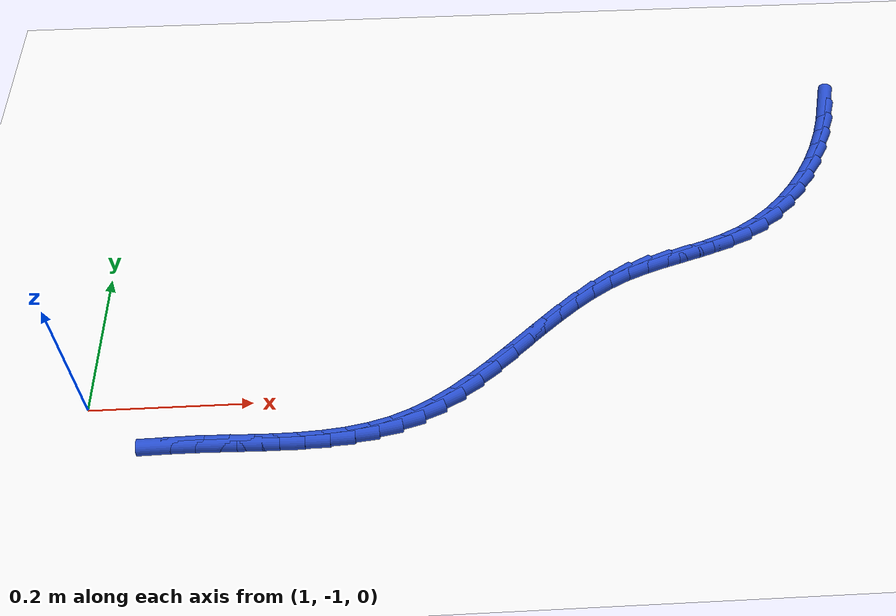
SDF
<sdf version="1.6">
 <world name="default">
  <model name="ground_plane">
   <static>1</static>
   <link name="link">
    <collision name="collision">
     <geometry><plane><normal>0 0 1</normal><size>100 100</size></plane></geometry>
     <surface><friction><ode><mu>100</mu><mu2>50</mu2></ode></friction></surface>
    </collision>
    <visual name="visual">
     <cast_shadows>0</cast_shadows>
     <geometry><plane><normal>0 0 1</normal><size>100 100</size></plane></geometry>
     <material>
      <script><uri>file://media/materials/scripts/gazebo.material</uri><name>Gazebo/WhiteGlow</name></script>
     </material>
    </visual>
   </link>
  </model>
  <model name="line">
   <link name="link_133">
    <pose>2.006387445157155 -0.53303449588639 0.01 0 1.57 1.3048981811410398</pose>
    <collision name="collision">
     <geometry><cylinder><radius>0.01</radius><length>0.08</length></cylinder></geometry>
    </collision>
    <visual name="visual">
     <material>
      <script><name>Gazebo/Blue</name><uri>file://media/materials/scripts/gazebo.material</uri></script>
     </material>
     <geometry><cylinder><radius>0.01</radius><length>0.08</length></cylinder></geometry>
    </visual>
   </link>
   <link name="link_134">
    <pose>1.9984526630829604 -0.5621693116556092 0.01 0 1.57 1.2307072129985344</pose>
    <collision name="collision">
     <geometry><cylinder><radius>0.01</radius><length>0.08</length></cylinder></geometry>
    </collision>
    <visual name="visual">
     <material>
      <script><name>Gazebo/Blue</name><uri>file://media/materials/scripts/gazebo.material</uri></script>
     </material>
     <geometry><cylinder><radius>0.01</radius><length>0.08</length></cylinder></geometry>
    </visual>
   </link>
   <link name="link_135">
    <pose>1.9883076498338026 -0.5908407311772058 0.01 0 1.57 1.157091044256154</pose>
    <collision name="collision">
     <geometry><cylinder><radius>0.01</radius><length>0.08</length></cylinder></geometry>
    </collision>
    <visual name="visual">
     <material>
      <script><name>Gazebo/Blue</name><uri>file://media/materials/scripts/gazebo.material</uri></script>
     </material>
     <geometry><cylinder><radius>0.01</radius><length>0.08</length></cylinder></geometry>
    </visual>
   </link>
   <link name="link_136">
    <pose>1.976042726905788 -0.6187762804779123 0.01 0 1.57 1.0827684662781034</pose>
    <collision name="collision">
     <geometry><cylinder><radius>0.01</radius><length>0.08</length></cylinder></geometry>
    </collision>
    <visual name="visual">
     <material>
      <script><name>Gazebo/Blue</name><uri>file://media/materials/scripts/gazebo.material</uri></script>
     </material>
     <geometry><cylinder><radius>0.01</radius><length>0.08</length></cylinder></geometry>
    </visual>
   </link>
   <link name="link_137">
    <pose>1.9617482157950208 -0.6457034855844632 0.01 0 1.57 1.0064755967132812</pose>
    <collision name="collision">
     <geometry><cylinder><radius>0.01</radius><length>0.08</length></cylinder></geometry>
    </collision>
    <visual name="visual">
     <material>
      <script><name>Gazebo/Blue</name><uri>file://media/materials/scripts/gazebo.material</uri></script>
     </material>
     <geometry><cylinder><radius>0.01</radius><length>0.08</length></cylinder></geometry>
    </visual>
   </link>
   <link name="link_138">
    <pose>1.9455144379976055 -0.6713498725235927 0.01 0 1.57 0.9269525851064229</pose>
    <collision name="collision">
     <geometry><cylinder><radius>0.01</radius><length>0.08</length></cylinder></geometry>
    </collision>
    <visual name="visual">
     <material>
      <script><name>Gazebo/Blue</name><uri>file://media/materials/scripts/gazebo.material</uri></script>
     </material>
     <geometry><cylinder><radius>0.01</radius><length>0.08</length></cylinder></geometry>
    </visual>
   </link>
   <link name="link_139">
    <pose>1.927431715009647 -0.6954429673220341 0.01 0 1.57 0.842946951529999</pose>
    <collision name="collision">
     <geometry><cylinder><radius>0.01</radius><length>0.08</length></cylinder></geometry>
    </collision>
    <visual name="visual">
     <material>
      <script><name>Gazebo/Blue</name><uri>file://media/materials/scripts/gazebo.material</uri></script>
     </material>
     <geometry><cylinder><radius>0.01</radius><length>0.08</length></cylinder></geometry>
    </visual>
   </link>
   <link name="link_140">
    <pose>1.907590368327249 -0.7177102960065225 0.01 0 1.57 0.7532451192439258</pose>
    <collision name="collision">
     <geometry><cylinder><radius>0.01</radius><length>0.08</length></cylinder></geometry>
    </collision>
    <visual name="visual">
     <material>
      <script><name>Gazebo/Blue</name><uri>file://media/materials/scripts/gazebo.material</uri></script>
     </material>
     <geometry><cylinder><radius>0.01</radius><length>0.08</length></cylinder></geometry>
    </visual>
   </link>
   <link name="link_141">
    <pose>1.886080719446518 -0.7378793846037901 0.01 0 1.57 0.6567467637879197</pose>
    <collision name="collision">
     <geometry><cylinder><radius>0.01</radius><length>0.08</length></cylinder></geometry>
    </collision>
    <visual name="visual">
     <material>
      <script><name>Gazebo/Blue</name><uri>file://media/materials/scripts/gazebo.material</uri></script>
     </material>
     <geometry><cylinder><radius>0.01</radius><length>0.08</length></cylinder></geometry>
    </visual>
   </link>
   <link name="link_142">
    <pose>1.8629930898635574 -0.7556777591405712 0.01 0 1.57 0.552596881856872</pose>
    <collision name="collision">
     <geometry><cylinder><radius>0.01</radius><length>0.08</length></cylinder></geometry>
    </collision>
    <visual name="visual">
     <material>
      <script><name>Gazebo/Blue</name><uri>file://media/materials/scripts/gazebo.material</uri></script>
     </material>
     <geometry><cylinder><radius>0.01</radius><length>0.08</length></cylinder></geometry>
    </visual>
   </link>
   <link name="link_143">
    <pose>1.8384178010744738 -0.7708329456436005 0.01 0 1.57 0.44484401778221255</pose>
    <collision name="collision">
     <geometry><cylinder><radius>0.01</radius><length>0.08</length></cylinder></geometry>
    </collision>
    <visual name="visual">
     <material>
      <script><name>Gazebo/Blue</name><uri>file://media/materials/scripts/gazebo.material</uri></script>
     </material>
     <geometry><cylinder><radius>0.01</radius><length>0.08</length></cylinder></geometry>
    </visual>
   </link>
   <link name="link_144">
    <pose>1.8124807731630779 -0.783197430775486 0.01 0 1.57 0.3618407306669391</pose>
    <collision name="collision">
     <geometry><cylinder><radius>0.01</radius><length>0.08</length></cylinder></geometry>
    </collision>
    <visual name="visual">
     <material>
      <script><name>Gazebo/Blue</name><uri>file://media/materials/scripts/gazebo.material</uri></script>
     </material>
     <geometry><cylinder><radius>0.01</radius><length>0.08</length></cylinder></geometry>
    </visual>
   </link>
   <link name="link_145">
    <pose>1.785528769699124 -0.7933989213468388 0.01 0 1.57 0.3146912225506137</pose>
    <collision name="collision">
     <geometry><cylinder><radius>0.01</radius><length>0.08</length></cylinder></geometry>
    </collision>
    <visual name="visual">
     <material>
      <script><name>Gazebo/Blue</name><uri>file://media/materials/scripts/gazebo.material</uri></script>
     </material>
     <geometry><cylinder><radius>0.01</radius><length>0.08</length></cylinder></geometry>
    </visual>
   </link>
   <link name="link_146">
    <pose>1.7579931253568222 -0.8023619915349277 0.01 0 1.57 0.30279918135820827</pose>
    <collision name="collision">
     <geometry><cylinder><radius>0.01</radius><length>0.08</length></cylinder></geometry>
    </collision>
    <visual name="visual">
     <material>
      <script><name>Gazebo/Blue</name><uri>file://media/materials/scripts/gazebo.material</uri></script>
     </material>
     <geometry><cylinder><radius>0.01</radius><length>0.08</length></cylinder></geometry>
    </visual>
   </link>
   <link name="link_147">
    <pose>1.7303053465346845 -0.8110118183155924 0.01 0 1.57 0.3258699603232478</pose>
    <collision name="collision">
     <geometry><cylinder><radius>0.01</radius><length>0.08</length></cylinder></geometry>
    </collision>
    <visual name="visual">
     <material>
      <script><name>Gazebo/Blue</name><uri>file://media/materials/scripts/gazebo.material</uri></script>
     </material>
     <geometry><cylinder><radius>0.01</radius><length>0.08</length></cylinder></geometry>
    </visual>
   </link>
   <link name="link_148">
    <pose>1.7028969396312208 -0.8202735786646721 0.01 0 1.57 0.3843706633064014</pose>
    <collision name="collision">
     <geometry><cylinder><radius>0.01</radius><length>0.08</length></cylinder></geometry>
    </collision>
    <visual name="visual">
     <material>
      <script><name>Gazebo/Blue</name><uri>file://media/materials/scripts/gazebo.material</uri></script>
     </material>
     <geometry><cylinder><radius>0.01</radius><length>0.08</length></cylinder></geometry>
    </visual>
   </link>
   <link name="link_149">
    <pose>1.6761994110449434 -0.831072449558005 0.01 0 1.57 0.4725693408210022</pose>
    <collision name="collision">
     <geometry><cylinder><radius>0.01</radius><length>0.08</length></cylinder></geometry>
    </collision>
    <visual name="visual">
     <material>
      <script><name>Gazebo/Blue</name><uri>file://media/materials/scripts/gazebo.material</uri></script>
     </material>
     <geometry><cylinder><radius>0.01</radius><length>0.08</length></cylinder></geometry>
    </visual>
   </link>
   <link name="link_150">
    <pose>1.6505716304709017 -0.8441734333799045 0.01 0 1.57 0.5555448688507726</pose>
    <collision name="collision">
     <geometry><cylinder><radius>0.01</radius><length>0.08</length></cylinder></geometry>
    </collision>
    <visual name="visual">
     <material>
      <script><name>Gazebo/Blue</name><uri>file://media/materials/scripts/gazebo.material</uri></script>
     </material>
     <geometry><cylinder><radius>0.01</radius><length>0.08</length></cylinder></geometry>
    </visual>
   </link>
   <link name="link_151">
    <pose>1.6259668580703506 -0.859447103964118 0.01 0 1.57 0.6210451784900131</pose>
    <collision name="collision">
     <geometry><cylinder><radius>0.01</radius><length>0.08</length></cylinder></geometry>
    </collision>
    <visual name="visual">
     <material>
      <script><name>Gazebo/Blue</name><uri>file://media/materials/scripts/gazebo.material</uri></script>
     </material>
     <geometry><cylinder><radius>0.01</radius><length>0.08</length></cylinder></geometry>
    </visual>
   </link>
   <link name="link_152">
    <pose>1.6021976247568532 -0.876453706499361 0.01 0 1.57 0.6695088929373016</pose>
    <collision name="collision">
     <geometry><cylinder><radius>0.01</radius><length>0.08</length></cylinder></geometry>
    </collision>
    <visual name="visual">
     <material>
      <script><name>Gazebo/Blue</name><uri>file://media/materials/scripts/gazebo.material</uri></script>
     </material>
     <geometry><cylinder><radius>0.01</radius><length>0.08</length></cylinder></geometry>
    </visual>
   </link>
   <link name="link_153">
    <pose>1.5790763224766375 -0.8947531797309798 0.01 0 1.57 0.7016808063355808</pose>
    <collision name="collision">
     <geometry><cylinder><radius>0.01</radius><length>0.08</length></cylinder></geometry>
    </collision>
    <visual name="visual">
     <material>
      <script><name>Gazebo/Blue</name><uri>file://media/materials/scripts/gazebo.material</uri></script>
     </material>
     <geometry><cylinder><radius>0.01</radius><length>0.08</length></cylinder></geometry>
    </visual>
   </link>
   <link name="link_154">
    <pose>1.556415343175933 -0.9139054624043192 0.01 0 1.57 0.7182047927507804</pose>
    <collision name="collision">
     <geometry><cylinder><radius>0.01</radius><length>0.08</length></cylinder></geometry>
    </collision>
    <visual name="visual">
     <material>
      <script><name>Gazebo/Blue</name><uri>file://media/materials/scripts/gazebo.material</uri></script>
     </material>
     <geometry><cylinder><radius>0.01</radius><length>0.08</length></cylinder></geometry>
    </visual>
   </link>
   <link name="link_155">
    <pose>1.5340270788009673 -0.9334704932647255 0.01 0 1.57 0.7193999422272347</pose>
    <collision name="collision">
     <geometry><cylinder><radius>0.01</radius><length>0.08</length></cylinder></geometry>
    </collision>
    <visual name="visual">
     <material>
      <script><name>Gazebo/Blue</name><uri>file://media/materials/scripts/gazebo.material</uri></script>
     </material>
     <geometry><cylinder><radius>0.01</radius><length>0.08</length></cylinder></geometry>
    </visual>
   </link>
   <link name="link_156">
    <pose>1.511723921297969 -0.9530082110575443 0.01 0 1.57 0.7051552914026484</pose>
    <collision name="collision">
     <geometry><cylinder><radius>0.01</radius><length>0.08</length></cylinder></geometry>
    </collision>
    <visual name="visual">
     <material>
      <script><name>Gazebo/Blue</name><uri>file://media/materials/scripts/gazebo.material</uri></script>
     </material>
     <geometry><cylinder><radius>0.01</radius><length>0.08</length></cylinder></geometry>
    </visual>
   </link>
   <link name="link_157">
    <pose>1.4893182626131647 -0.9720785545281212 0.01 0 1.57 0.6749100052812279</pose>
    <collision name="collision">
     <geometry><cylinder><radius>0.01</radius><length>0.08</length></cylinder></geometry>
    </collision>
    <visual name="visual">
     <material>
      <script><name>Gazebo/Blue</name><uri>file://media/materials/scripts/gazebo.material</uri></script>
     </material>
     <geometry><cylinder><radius>0.01</radius><length>0.08</length></cylinder></geometry>
    </visual>
   </link>
   <link name="link_158">
    <pose>1.4666224946927848 -0.9902414624218018 0.01 0 1.57 0.627722003265983</pose>
    <collision name="collision">
     <geometry><cylinder><radius>0.01</radius><length>0.08</length></cylinder></geometry>
    </collision>
    <visual name="visual">
     <material>
      <script><name>Gazebo/Blue</name><uri>file://media/materials/scripts/gazebo.material</uri></script>
     </material>
     <geometry><cylinder><radius>0.01</radius><length>0.08</length></cylinder></geometry>
    </visual>
   </link>
   <link name="link_159">
    <pose>1.4434490094830563 -1.0070568734839311 0.01 0 1.57 0.5624690421747341</pose>
    <collision name="collision">
     <geometry><cylinder><radius>0.01</radius><length>0.08</length></cylinder></geometry>
    </collision>
    <visual name="visual">
     <material>
      <script><name>Gazebo/Blue</name><uri>file://media/materials/scripts/gazebo.material</uri></script>
     </material>
     <geometry><cylinder><radius>0.01</radius><length>0.08</length></cylinder></geometry>
    </visual>
   </link>
   <link name="link_160">
    <pose>1.4196101989302075 -1.0220847264598554 0.01 0 1.57 0.4782600930843505</pose>
    <collision name="collision">
     <geometry><cylinder><radius>0.01</radius><length>0.08</length></cylinder></geometry>
    </collision>
    <visual name="visual">
     <material>
      <script><name>Gazebo/Blue</name><uri>file://media/materials/scripts/gazebo.material</uri></script>
     </material>
     <geometry><cylinder><radius>0.01</radius><length>0.08</length></cylinder></geometry>
    </visual>
   </link>
   <link name="link_161">
    <pose>1.394918454980466 -1.0348849600949204 0.01 0 1.57 0.37531980018355093</pose>
    <collision name="collision">
     <geometry><cylinder><radius>0.01</radius><length>0.08</length></cylinder></geometry>
    </collision>
    <visual name="visual">
     <material>
      <script><name>Gazebo/Blue</name><uri>file://media/materials/scripts/gazebo.material</uri></script>
     </material>
     <geometry><cylinder><radius>0.01</radius><length>0.08</length></cylinder></geometry>
    </visual>
   </link>
   <link name="link_162">
    <pose>1.369188287388725 -1.0450225425123345 0.01 0 1.57 0.2676984561806345</pose>
    <collision name="collision">
     <geometry><cylinder><radius>0.01</radius><length>0.08</length></cylinder></geometry>
    </collision>
    <visual name="visual">
     <material>
      <script><name>Gazebo/Blue</name><uri>file://media/materials/scripts/gazebo.material</uri></script>
     </material>
     <geometry><cylinder><radius>0.01</radius><length>0.08</length></cylinder></geometry>
    </visual>
   </link>
   <link name="link_163">
    <pose>1.3423675035636995 -1.05237899747164 0.01 0 1.57 0.17671805204597904</pose>
    <collision name="collision">
     <geometry><cylinder><radius>0.01</radius><length>0.08</length></cylinder></geometry>
    </collision>
    <visual name="visual">
     <material>
      <script><name>Gazebo/Blue</name><uri>file://media/materials/scripts/gazebo.material</uri></script>
     </material>
     <geometry><cylinder><radius>0.01</radius><length>0.08</length></cylinder></geometry>
    </visual>
   </link>
   <link name="link_164">
    <pose>1.314614185924523 -1.057335210407694 0.01 0 1.57 0.10417861419440663</pose>
    <collision name="collision">
     <geometry><cylinder><radius>0.01</radius><length>0.08</length></cylinder></geometry>
    </collision>
    <visual name="visual">
     <material>
      <script><name>Gazebo/Blue</name><uri>file://media/materials/scripts/gazebo.material</uri></script>
     </material>
     <geometry><cylinder><radius>0.01</radius><length>0.08</length></cylinder></geometry>
    </visual>
   </link>
   <link name="link_165">
    <pose>1.2861049401415043 -1.0603160558233864 0.01 0 1.57 0.04913274626266543</pose>
    <collision name="collision">
     <geometry><cylinder><radius>0.01</radius><length>0.08</length></cylinder></geometry>
    </collision>
    <visual name="visual">
     <material>
      <script><name>Gazebo/Blue</name><uri>file://media/materials/scripts/gazebo.material</uri></script>
     </material>
     <geometry><cylinder><radius>0.01</radius><length>0.08</length></cylinder></geometry>
    </visual>
   </link>
   <link name="link_166">
    <pose>1.2570163718849512 -1.0617464082216068 0.01 0 1.57 0.010332647021524357</pose>
    <collision name="collision">
     <geometry><cylinder><radius>0.01</radius><length>0.08</length></cylinder></geometry>
    </collision>
    <visual name="visual">
     <material>
      <script><name>Gazebo/Blue</name><uri>file://media/materials/scripts/gazebo.material</uri></script>
     </material>
     <geometry><cylinder><radius>0.01</radius><length>0.08</length></cylinder></geometry>
    </visual>
   </link>
   <link name="link_167">
    <pose>1.2275250868251746 -1.062051142105246 0.01 0 1.57 -0.013325080265547743</pose>
    <collision name="collision">
     <geometry><cylinder><radius>0.01</radius><length>0.08</length></cylinder></geometry>
    </collision>
    <visual name="visual">
     <material>
      <script><name>Gazebo/Blue</name><uri>file://media/materials/scripts/gazebo.material</uri></script>
     </material>
     <geometry><cylinder><radius>0.01</radius><length>0.08</length></cylinder></geometry>
    </visual>
   </link>
   <link name="link_168">
    <pose>1.1978076906324817 -1.0616551319771936 0.01 0 1.57 -0.022567534217269012</pose>
    <collision name="collision">
     <geometry><cylinder><radius>0.01</radius><length>0.08</length></cylinder></geometry>
    </collision>
    <visual name="visual">
     <material>
      <script><name>Gazebo/Blue</name><uri>file://media/materials/scripts/gazebo.material</uri></script>
     </material>
     <geometry><cylinder><radius>0.01</radius><length>0.08</length></cylinder></geometry>
    </visual>
   </link>
   <link name="link_169">
    <pose>1.168040788977182 -1.0609832523403395 0.01 0 1.57 -0.017639133435586214</pose>
    <collision name="collision">
     <geometry><cylinder><radius>0.01</radius><length>0.08</length></cylinder></geometry>
    </collision>
    <visual name="visual">
     <material>
      <script><name>Gazebo/Blue</name><uri>file://media/materials/scripts/gazebo.material</uri></script>
     </material>
     <geometry><cylinder><radius>0.01</radius><length>0.08</length></cylinder></geometry>
    </visual>
   </link>
   <link name="link_170">
    <pose>1.1384009875295833 -1.0604603776975734 0.01 0 1.57 0.0004241190733531195</pose>
    <collision name="collision">
     <geometry><cylinder><radius>0.01</radius><length>0.08</length></cylinder></geometry>
    </collision>
    <visual name="visual">
     <material>
      <script><name>Gazebo/Blue</name><uri>file://media/materials/scripts/gazebo.material</uri></script>
     </material>
     <geometry><cylinder><radius>0.01</radius><length>0.08</length></cylinder></geometry>
    </visual>
   </link>
   <link name="link_171">
    <pose>1.1090504553948148 -1.0604728258188112 0.01 0 1.57 0.0180906297204655</pose>
    <collision name="collision">
     <geometry><cylinder><radius>0.01</radius><length>0.08</length></cylinder></geometry>
    </collision>
    <visual name="visual">
     <material>
      <script><name>Gazebo/Blue</name><uri>file://media/materials/scripts/gazebo.material</uri></script>
     </material>
     <geometry><cylinder><radius>0.01</radius><length>0.08</length></cylinder></geometry>
    </visual>
   </link>
  </model>
 </world>
</sdf>
